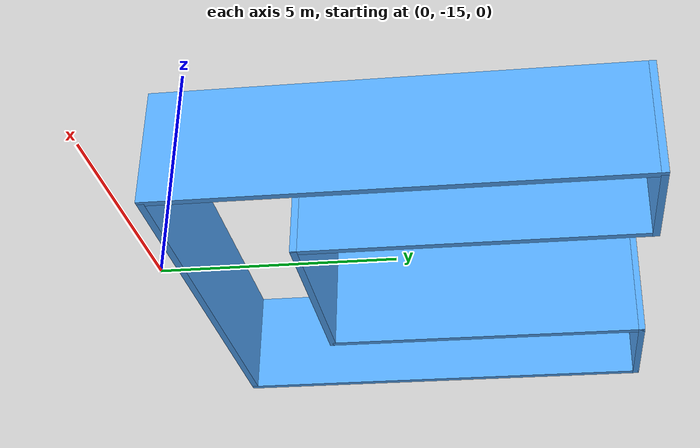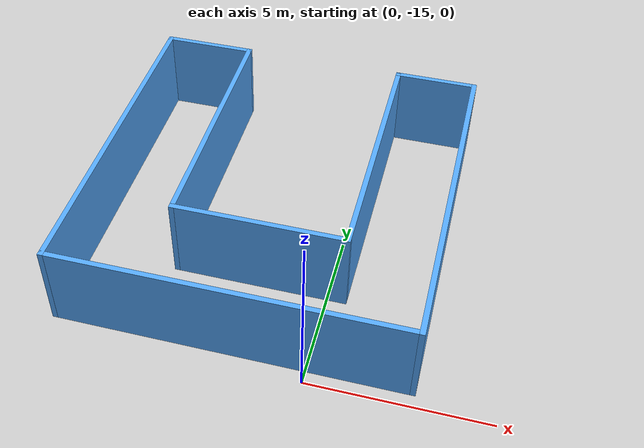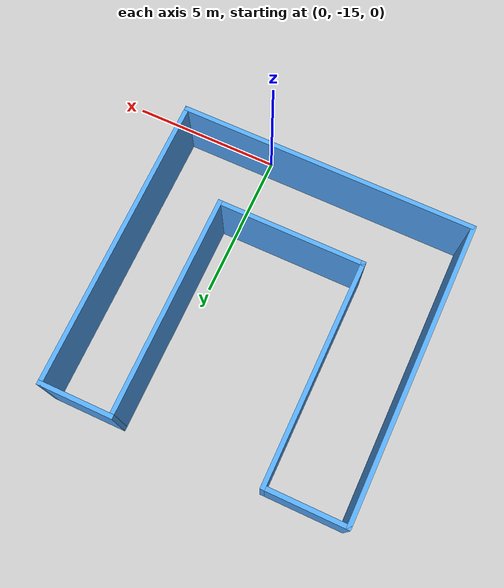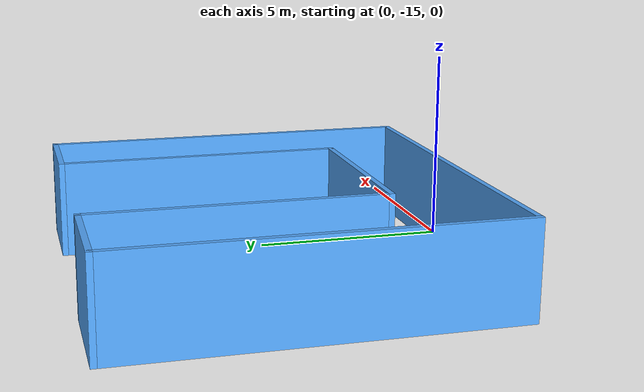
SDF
<?xml version='1.0'?>
<sdf version='1.6'>
  <model name='MyWorld'>
    <pose frame=''>-2.0958 -9.65035 0 0 -0 0</pose>
    <link name='Wall_20'>
      <collision name='Wall_20_Collision'>
        <geometry>
          <box>
            <size>10 0.15 2.5</size>
          </box>
        </geometry>
        <pose frame=''>0 0 1.25 0 -0 0</pose>
      </collision>
      <visual name='Wall_20_Visual'>
        <pose frame=''>0 0 1.25 0 -0 0</pose>
        <geometry>
          <box>
            <size>10 0.15 2.5</size>
          </box>
        </geometry>
        <material>
          <script>
            <uri>file://media/materials/scripts/gazebo.material</uri>
            <name>Gazebo/Grey</name>
          </script>
          <ambient>0.333333 0.666667 1 1</ambient>
        </material>
      </visual>
      <pose frame=''>-4.925 0 0 0 0 -1.5708</pose>
    </link>
    <link name='Wall_21'>
      <collision name='Wall_21_Collision'>
        <geometry>
          <box>
            <size>10 0.15 2.5</size>
          </box>
        </geometry>
        <pose frame=''>0 0 1.25 0 -0 0</pose>
      </collision>
      <visual name='Wall_21_Visual'>
        <pose frame=''>0 0 1.25 0 -0 0</pose>
        <geometry>
          <box>
            <size>10 0.15 2.5</size>
          </box>
        </geometry>
        <material>
          <script>
            <uri>file://media/materials/scripts/gazebo.material</uri>
            <name>Gazebo/Grey</name>
          </script>
          <ambient>0.333333 0.666667 1 1</ambient>
        </material>
      </visual>
      <pose frame=''>0 -4.925 0 0 -0 0</pose>
    </link>
    <link name='Wall_22'>
      <collision name='Wall_22_Collision'>
        <geometry>
          <box>
            <size>10 0.15 2.5</size>
          </box>
        </geometry>
        <pose frame=''>0 0 1.25 0 -0 0</pose>
      </collision>
      <visual name='Wall_22_Visual'>
        <pose frame=''>0 0 1.25 0 -0 0</pose>
        <geometry>
          <box>
            <size>10 0.15 2.5</size>
          </box>
        </geometry>
        <material>
          <script>
            <uri>file://media/materials/scripts/gazebo.material</uri>
            <name>Gazebo/Grey</name>
          </script>
          <ambient>0.333333 0.666667 1 1</ambient>
        </material>
      </visual>
      <pose frame=''>4.925 0 0 0 -0 1.5708</pose>
    </link>
    <link name='Wall_23'>
      <collision name='Wall_23_Collision'>
        <geometry>
          <box>
            <size>2.5 0.15 2.5</size>
          </box>
        </geometry>
        <pose frame=''>0 0 1.25 0 -0 0</pose>
      </collision>
      <visual name='Wall_23_Visual'>
        <pose frame=''>0 0 1.25 0 -0 0</pose>
        <geometry>
          <box>
            <size>2.5 0.15 2.5</size>
          </box>
        </geometry>
        <material>
          <script>
            <uri>file://media/materials/scripts/gazebo.material</uri>
            <name>Gazebo/Grey</name>
          </script>
          <ambient>0.333333 0.666667 1 1</ambient>
        </material>
      </visual>
      <pose frame=''>3.75 4.925 0 0 -0 3.14159</pose>
    </link>
    <link name='Wall_24'>
      <collision name='Wall_24_Collision'>
        <geometry>
          <box>
            <size>7.5 0.15 2.5</size>
          </box>
        </geometry>
        <pose frame=''>0 0 1.25 0 -0 0</pose>
      </collision>
      <visual name='Wall_24_Visual'>
        <pose frame=''>0 0 1.25 0 -0 0</pose>
        <geometry>
          <box>
            <size>7.5 0.15 2.5</size>
          </box>
        </geometry>
        <material>
          <script>
            <uri>file://media/materials/scripts/gazebo.material</uri>
            <name>Gazebo/Grey</name>
          </script>
          <ambient>0.333333 0.666667 1 1</ambient>
        </material>
      </visual>
      <pose frame=''>2.575 1.25 0 0 0 -1.5708</pose>
    </link>
    <link name='Wall_25'>
      <collision name='Wall_25_Collision'>
        <geometry>
          <box>
            <size>5 0.15 2.5</size>
          </box>
        </geometry>
        <pose frame=''>0 0 1.25 0 -0 0</pose>
      </collision>
      <visual name='Wall_25_Visual'>
        <pose frame=''>0 0 1.25 0 -0 0</pose>
        <geometry>
          <box>
            <size>5 0.15 2.5</size>
          </box>
        </geometry>
        <material>
          <script>
            <uri>file://media/materials/scripts/gazebo.material</uri>
            <name>Gazebo/Grey</name>
          </script>
          <ambient>0.333333 0.666667 1 1</ambient>
        </material>
      </visual>
      <pose frame=''>0.15 -2.425 0 0 -0 3.14159</pose>
    </link>
    <link name='Wall_26'>
      <collision name='Wall_26_Collision'>
        <geometry>
          <box>
            <size>7.5 0.15 2.5</size>
          </box>
        </geometry>
        <pose frame=''>0 0 1.25 0 -0 0</pose>
      </collision>
      <visual name='Wall_26_Visual'>
        <pose frame=''>0 0 1.25 0 -0 0</pose>
        <geometry>
          <box>
            <size>7.5 0.15 2.5</size>
          </box>
        </geometry>
        <material>
          <script>
            <uri>file://media/materials/scripts/gazebo.material</uri>
            <name>Gazebo/Grey</name>
          </script>
          <ambient>0.333333 0.666667 1 1</ambient>
        </material>
      </visual>
      <pose frame=''>-2.275 1.25 0 0 -0 1.5708</pose>
    </link>
    <link name='Wall_27'>
      <collision name='Wall_27_Collision'>
        <geometry>
          <box>
            <size>2.8 0.15 2.5</size>
          </box>
        </geometry>
        <pose frame=''>0 0 1.25 0 -0 0</pose>
      </collision>
      <visual name='Wall_27_Visual'>
        <pose frame=''>0 0 1.25 0 -0 0</pose>
        <geometry>
          <box>
            <size>2.8 0.15 2.5</size>
          </box>
        </geometry>
        <material>
          <script>
            <uri>file://media/materials/scripts/gazebo.material</uri>
            <name>Gazebo/Grey</name>
          </script>
          <ambient>0.333333 0.666667 1 1</ambient>
        </material>
      </visual>
      <pose frame=''>-3.6 4.925 0 0 -0 3.14159</pose>
    </link>
    <static>1</static>
  </model>
</sdf>
